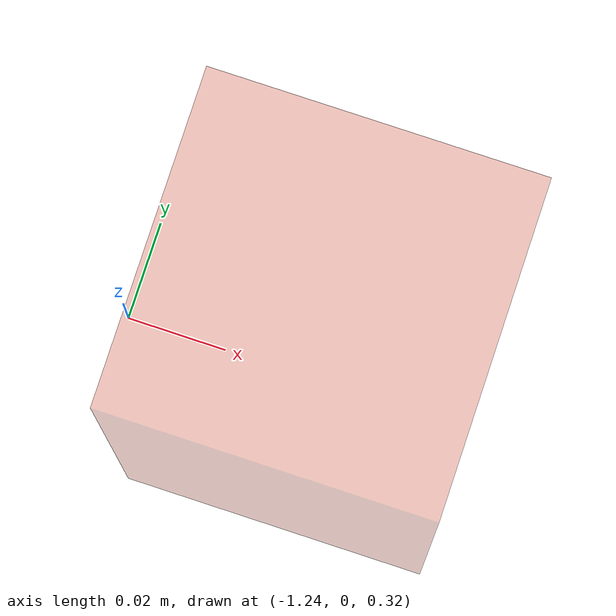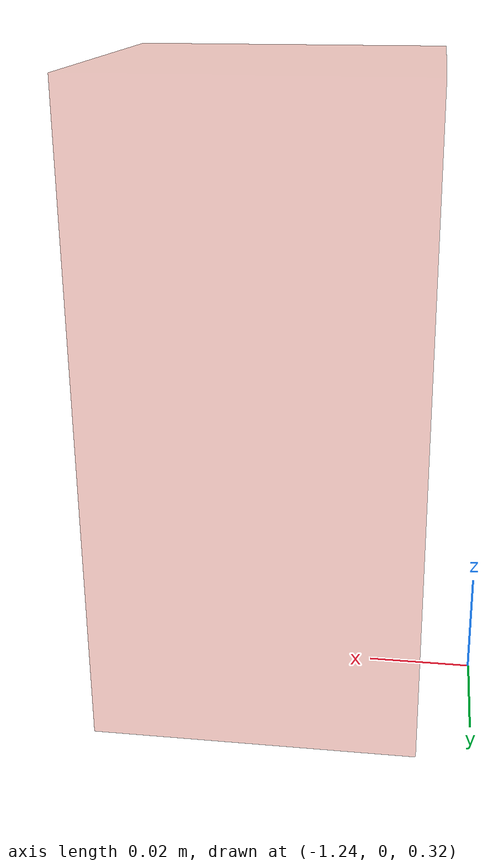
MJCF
<mujoco model="anchor-box">
  <worldbody>
    <body name="eef_body" pos="-1.2 0.0 0.38" quat="1.0 0.0 0.0 0.0">
      <geom name="eef_geom" type="box" mass="1" size="0.0300 0.0300 0.0600" contype="0" conaffinity="0" rgba=".8 .2 .1 0.3" friction="1 0.005 0.0001"/>
    </body>  </worldbody>
  <equality>
     <weld body1='B_last' body2='eef_body' solref='0.004 1' relpose='0.04 0 0 0 0 -1 0'/>
  </equality>
  <contact>
  </contact>
</mujoco>
